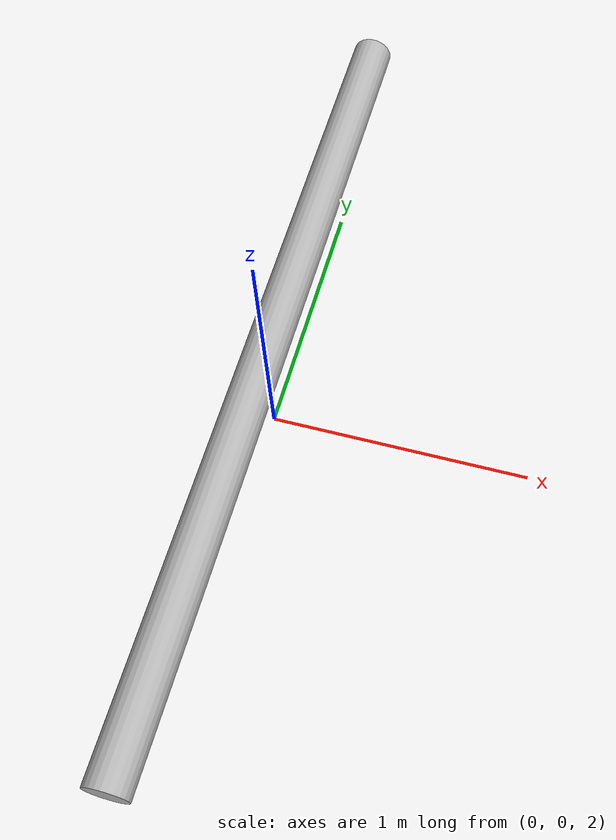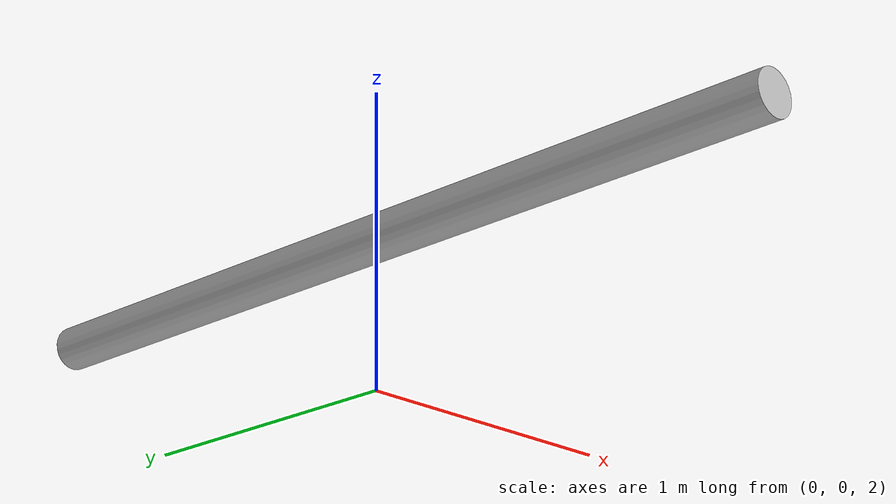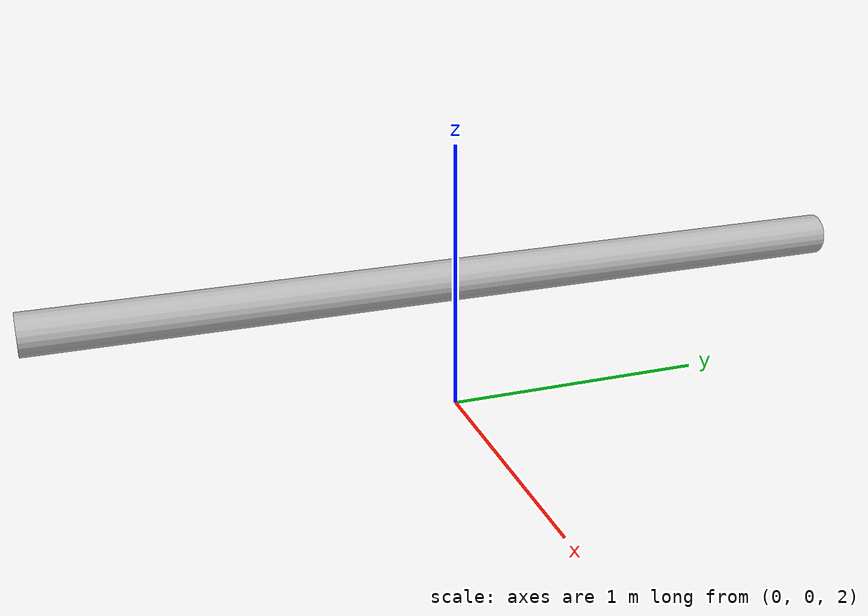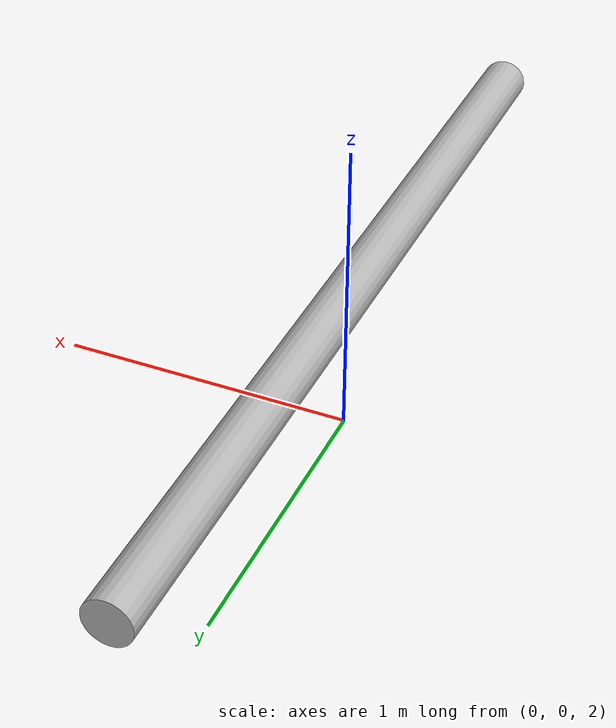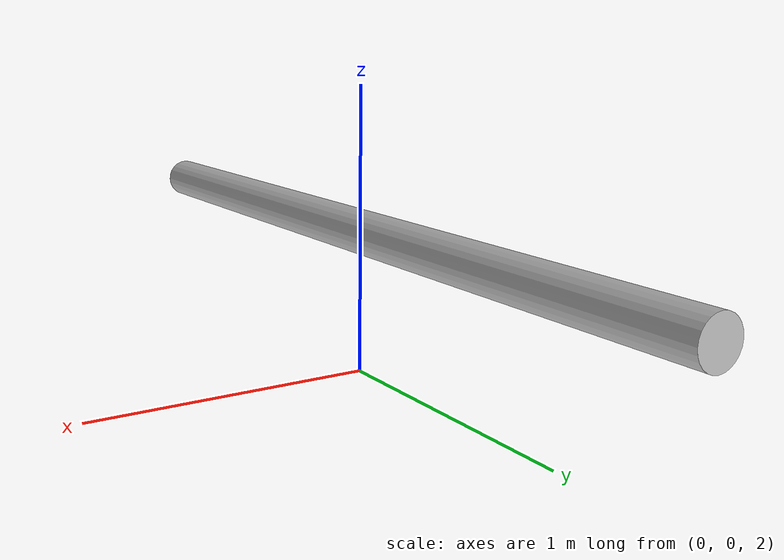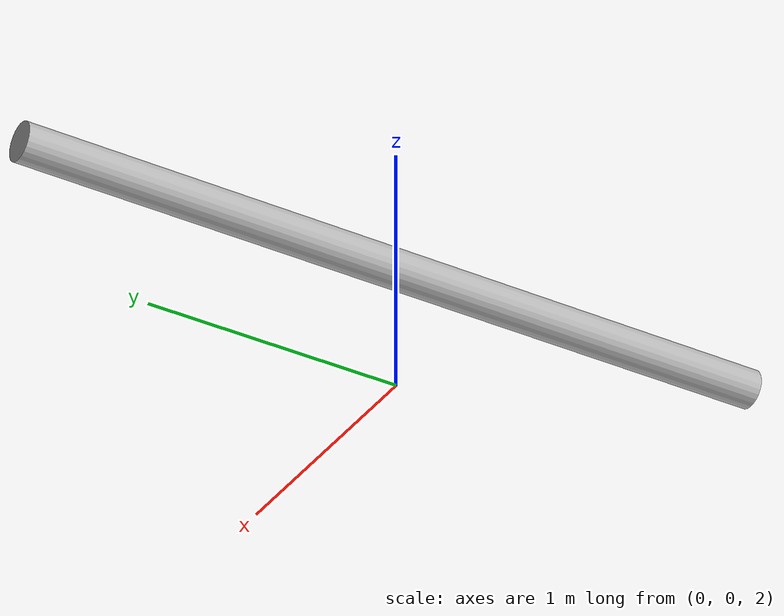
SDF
<?xml version="1.0"?>
<sdf version="1.6">
  <model name="gate">
    <pose>0 0 0 0 0 0</pose>
    <static>true</static>
      <link name="gate">
        <pose>0 0 2.5 1.5707 0 0</pose>
        <collision name="collision">
          <geometry>
            <cylinder>
              <radius>0.076</radius>
              <length>3.048</length>
            </cylinder>
          </geometry>
        </collision>
        <visual name="visual">
          <geometry>
            <cylinder>
              <radius>0.076</radius>
              <length>3.048</length>
            </cylinder>
          </geometry>
        </visual>
      </link>
  </model>
</sdf>
